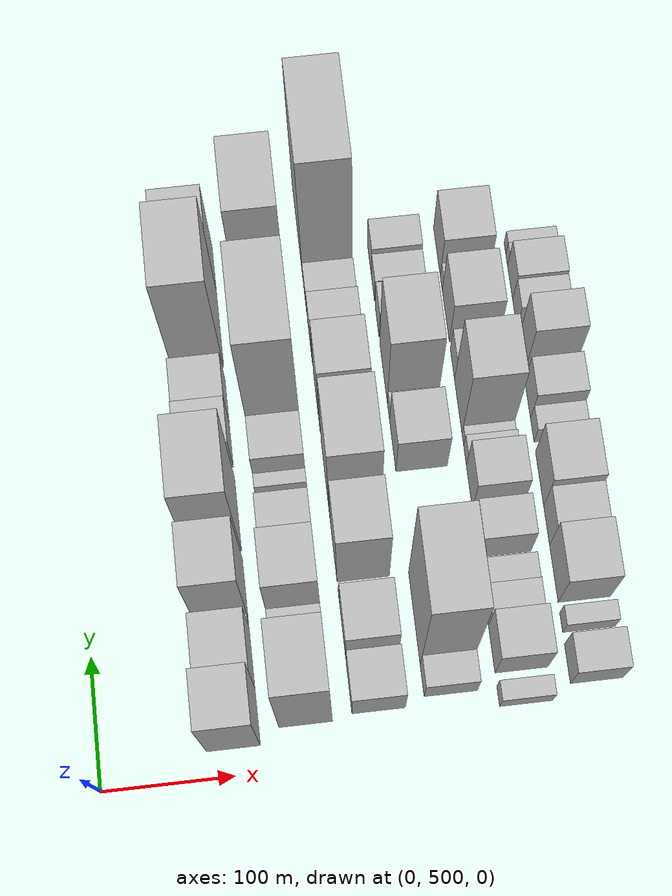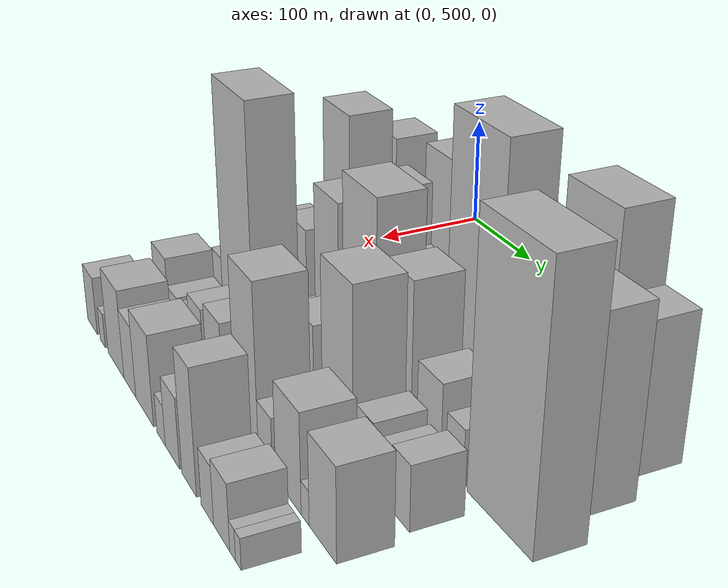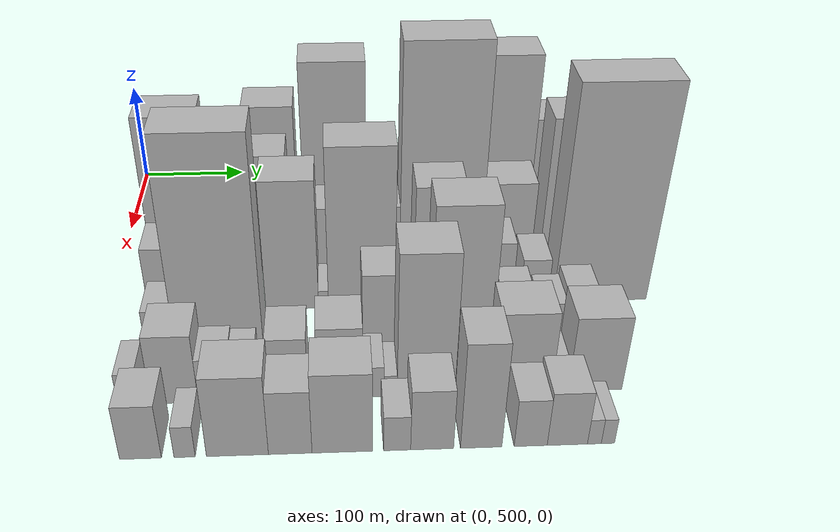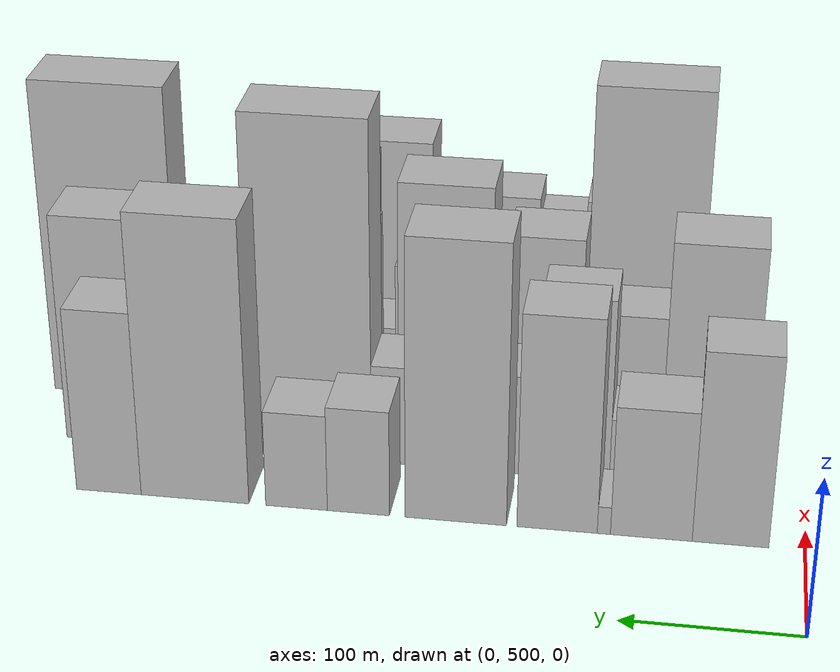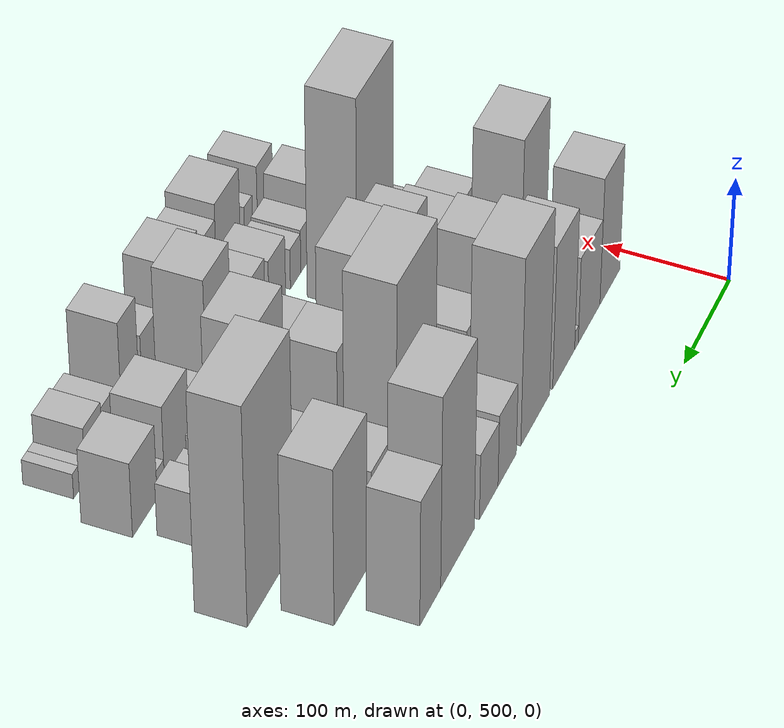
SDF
<sdf version="1.6">
 <world name="default">
  <model name="building_41">
   <static>1</static>
   <pose>100.0000 541.7731 0 0.000000 0.000000 0.000000</pose>
   <link name="link">
    <pose>0 0 61.50 0 0 0</pose>
    <collision name="collision"><geometry><box><size>40.0000 42.7162 123.0000</size></box></geometry></collision>
    <visual name="visual">
     <cast_shadows>0</cast_shadows>
     <geometry><box><size>40.0000 42.7162 123.0000</size></box></geometry>
     <material>
      <script>
       <uri>model://HANNAS_wall/materials/scripts</uri>
       <uri>model://HANNAS_wall/materials/textures</uri>
       <name>vrc/HANNAS_wall</name>
      </script>
     </material>
    </visual>
   </link>
  </model>
  <model name="building_42">
   <static>1</static>
   <pose>100.0000 586.1143 0 0.000000 0.000000 0.000000</pose>
   <link name="link">
    <pose>0 0 42.00 0 0 0</pose>
    <collision name="collision"><geometry><box><size>40.0000 45.9663 84.0000</size></box></geometry></collision>
    <visual name="visual">
     <cast_shadows>0</cast_shadows>
     <geometry><box><size>40.0000 45.9663 84.0000</size></box></geometry>
     <material>
      <script>
       <uri>model://HANNAS_wall/materials/scripts</uri>
       <uri>model://HANNAS_wall/materials/textures</uri>
       <name>vrc/HANNAS_wall</name>
      </script>
     </material>
    </visual>
   </link>
  </model>
  <model name="building_43">
   <static>1</static>
   <pose>100.0000 612.8241 0 0.000000 0.000000 0.000000</pose>
   <link name="link">
    <pose>0 0 9.00 0 0 0</pose>
    <collision name="collision"><geometry><box><size>40.0000 7.4533 18.0000</size></box></geometry></collision>
    <visual name="visual">
     <cast_shadows>0</cast_shadows>
     <geometry><box><size>40.0000 7.4533 18.0000</size></box></geometry>
     <material>
      <script>
       <uri>model://HANNAS_wall/materials/scripts</uri>
       <uri>model://HANNAS_wall/materials/textures</uri>
       <name>vrc/HANNAS_wall</name>
      </script>
     </material>
    </visual>
   </link>
  </model>
  <model name="building_44">
   <static>1</static>
   <pose>100.0000 639.4314 0 0.000000 0.000000 0.000000</pose>
   <link name="link">
    <pose>0 0 69.00 0 0 0</pose>
    <collision name="collision"><geometry><box><size>40.0000 45.7614 138.0000</size></box></geometry></collision>
    <visual name="visual">
     <cast_shadows>0</cast_shadows>
     <geometry><box><size>40.0000 45.7614 138.0000</size></box></geometry>
     <material>
      <script>
       <uri>model://HANNAS_wall/materials/scripts</uri>
       <uri>model://HANNAS_wall/materials/textures</uri>
       <name>vrc/HANNAS_wall</name>
      </script>
     </material>
    </visual>
   </link>
  </model>
  <model name="building_45">
   <static>1</static>
   <pose>100.0000 697.5358 0 0.000000 0.000000 0.000000</pose>
   <link name="link">
    <pose>0 0 90.00 0 0 0</pose>
    <collision name="collision"><geometry><box><size>40.0000 58.4473 180.0000</size></box></geometry></collision>
    <visual name="visual">
     <cast_shadows>0</cast_shadows>
     <geometry><box><size>40.0000 58.4473 180.0000</size></box></geometry>
     <material>
      <script>
       <uri>model://HANNAS_wall/materials/scripts</uri>
       <uri>model://HANNAS_wall/materials/textures</uri>
       <name>vrc/HANNAS_wall</name>
      </script>
     </material>
    </visual>
   </link>
  </model>
  <model name="building_46">
   <static>1</static>
   <pose>100.0000 753.8862 0 0.000000 0.000000 0.000000</pose>
   <link name="link">
    <pose>0 0 34.50 0 0 0</pose>
    <collision name="collision"><geometry><box><size>40.0000 36.2536 69.0000</size></box></geometry></collision>
    <visual name="visual">
     <cast_shadows>0</cast_shadows>
     <geometry><box><size>40.0000 36.2536 69.0000</size></box></geometry>
     <material>
      <script>
       <uri>model://HANNAS_wall/materials/scripts</uri>
       <uri>model://HANNAS_wall/materials/textures</uri>
       <name>vrc/HANNAS_wall</name>
      </script>
     </material>
    </visual>
   </link>
  </model>
  <model name="building_47">
   <static>1</static>
   <pose>100.0000 790.1084 0 0.000000 0.000000 0.000000</pose>
   <link name="link">
    <pose>0 0 31.50 0 0 0</pose>
    <collision name="collision"><geometry><box><size>40.0000 36.1908 63.0000</size></box></geometry></collision>
    <visual name="visual">
     <cast_shadows>0</cast_shadows>
     <geometry><box><size>40.0000 36.1908 63.0000</size></box></geometry>
     <material>
      <script>
       <uri>model://HANNAS_wall/materials/scripts</uri>
       <uri>model://HANNAS_wall/materials/textures</uri>
       <name>vrc/HANNAS_wall</name>
      </script>
     </material>
    </visual>
   </link>
  </model>
  <model name="building_48">
   <static>1</static>
   <pose>100.0000 850.2389 0 0.000000 0.000000 0.000000</pose>
   <link name="link">
    <pose>0 0 91.50 0 0 0</pose>
    <collision name="collision"><geometry><box><size>40.0000 64.0702 183.0000</size></box></geometry></collision>
    <visual name="visual">
     <cast_shadows>0</cast_shadows>
     <geometry><box><size>40.0000 64.0702 183.0000</size></box></geometry>
     <material>
      <script>
       <uri>model://HANNAS_wall/materials/scripts</uri>
       <uri>model://HANNAS_wall/materials/textures</uri>
       <name>vrc/HANNAS_wall</name>
      </script>
     </material>
    </visual>
   </link>
  </model>
  <model name="building_49">
   <static>1</static>
   <pose>100.0000 901.6904 0 0.000000 0.000000 0.000000</pose>
   <link name="link">
    <pose>0 0 60.00 0 0 0</pose>
    <collision name="collision"><geometry><box><size>40.0000 38.8329 120.0000</size></box></geometry></collision>
    <visual name="visual">
     <cast_shadows>0</cast_shadows>
     <geometry><box><size>40.0000 38.8329 120.0000</size></box></geometry>
     <material>
      <script>
       <uri>model://HANNAS_wall/materials/scripts</uri>
       <uri>model://HANNAS_wall/materials/textures</uri>
       <name>vrc/HANNAS_wall</name>
      </script>
     </material>
    </visual>
   </link>
  </model>
  <model name="building_91">
   <static>1</static>
   <pose>155.0000 558.3394 0 0.000000 0.000000 0.000000</pose>
   <link name="link">
    <pose>0 0 79.50 0 0 0</pose>
    <collision name="collision"><geometry><box><size>40.0000 52.7029 159.0000</size></box></geometry></collision>
    <visual name="visual">
     <cast_shadows>0</cast_shadows>
     <geometry><box><size>40.0000 52.7029 159.0000</size></box></geometry>
     <material>
      <script>
       <uri>model://HANNAS_wall/materials/scripts</uri>
       <uri>model://HANNAS_wall/materials/textures</uri>
       <name>vrc/HANNAS_wall</name>
      </script>
     </material>
    </visual>
   </link>
  </model>
  <model name="building_92">
   <static>1</static>
   <pose>155.0000 602.6896 0 0.000000 0.000000 0.000000</pose>
   <link name="link">
    <pose>0 0 21.00 0 0 0</pose>
    <collision name="collision"><geometry><box><size>40.0000 21.9977 42.0000</size></box></geometry></collision>
    <visual name="visual">
     <cast_shadows>0</cast_shadows>
     <geometry><box><size>40.0000 21.9977 42.0000</size></box></geometry>
     <material>
      <script>
       <uri>model://HANNAS_wall/materials/scripts</uri>
       <uri>model://HANNAS_wall/materials/textures</uri>
       <name>vrc/HANNAS_wall</name>
      </script>
     </material>
    </visual>
   </link>
  </model>
  <model name="building_93">
   <static>1</static>
   <pose>155.0000 634.9655 0 0.000000 0.000000 0.000000</pose>
   <link name="link">
    <pose>0 0 60.00 0 0 0</pose>
    <collision name="collision"><geometry><box><size>40.0000 42.5541 120.0000</size></box></geometry></collision>
    <visual name="visual">
     <cast_shadows>0</cast_shadows>
     <geometry><box><size>40.0000 42.5541 120.0000</size></box></geometry>
     <material>
      <script>
       <uri>model://HANNAS_wall/materials/scripts</uri>
       <uri>model://HANNAS_wall/materials/textures</uri>
       <name>vrc/HANNAS_wall</name>
      </script>
     </material>
    </visual>
   </link>
  </model>
  <model name="building_94">
   <static>1</static>
   <pose>155.0000 676.0114 0 0.000000 0.000000 0.000000</pose>
   <link name="link">
    <pose>0 0 33.00 0 0 0</pose>
    <collision name="collision"><geometry><box><size>40.0000 39.5377 66.0000</size></box></geometry></collision>
    <visual name="visual">
     <cast_shadows>0</cast_shadows>
     <geometry><box><size>40.0000 39.5377 66.0000</size></box></geometry>
     <material>
      <script>
       <uri>model://HANNAS_wall/materials/scripts</uri>
       <uri>model://HANNAS_wall/materials/textures</uri>
       <name>vrc/HANNAS_wall</name>
      </script>
     </material>
    </visual>
   </link>
  </model>
  <model name="building_95">
   <static>1</static>
   <pose>155.0000 699.5123 0 0.000000 0.000000 0.000000</pose>
   <link name="link">
    <pose>0 0 7.50 0 0 0</pose>
    <collision name="collision"><geometry><box><size>40.0000 7.4642 15.0000</size></box></geometry></collision>
    <visual name="visual">
     <cast_shadows>0</cast_shadows>
     <geometry><box><size>40.0000 7.4642 15.0000</size></box></geometry>
     <material>
      <script>
       <uri>model://HANNAS_wall/materials/scripts</uri>
       <uri>model://HANNAS_wall/materials/textures</uri>
       <name>vrc/HANNAS_wall</name>
      </script>
     </material>
    </visual>
   </link>
  </model>
  <model name="building_96">
   <static>1</static>
   <pose>155.0000 715.8029 0 0.000000 0.000000 0.000000</pose>
   <link name="link">
    <pose>0 0 13.50 0 0 0</pose>
    <collision name="collision"><geometry><box><size>40.0000 11.1169 27.0000</size></box></geometry></collision>
    <visual name="visual">
     <cast_shadows>0</cast_shadows>
     <geometry><box><size>40.0000 11.1169 27.0000</size></box></geometry>
     <material>
      <script>
       <uri>model://HANNAS_wall/materials/scripts</uri>
       <uri>model://HANNAS_wall/materials/textures</uri>
       <name>vrc/HANNAS_wall</name>
      </script>
     </material>
    </visual>
   </link>
  </model>
  <model name="building_97">
   <static>1</static>
   <pose>155.0000 738.3740 0 0.000000 0.000000 0.000000</pose>
   <link name="link">
    <pose>0 0 33.00 0 0 0</pose>
    <collision name="collision"><geometry><box><size>40.0000 34.0255 66.0000</size></box></geometry></collision>
    <visual name="visual">
     <cast_shadows>0</cast_shadows>
     <geometry><box><size>40.0000 34.0255 66.0000</size></box></geometry>
     <material>
      <script>
       <uri>model://HANNAS_wall/materials/scripts</uri>
       <uri>model://HANNAS_wall/materials/textures</uri>
       <name>vrc/HANNAS_wall</name>
      </script>
     </material>
    </visual>
   </link>
  </model>
  <model name="building_98">
   <static>1</static>
   <pose>155.0000 792.3889 0 0.000000 0.000000 0.000000</pose>
   <link name="link">
    <pose>0 0 111.00 0 0 0</pose>
    <collision name="collision"><geometry><box><size>40.0000 74.0043 222.0000</size></box></geometry></collision>
    <visual name="visual">
     <cast_shadows>0</cast_shadows>
     <geometry><box><size>40.0000 74.0043 222.0000</size></box></geometry>
     <material>
      <script>
       <uri>model://HANNAS_wall/materials/scripts</uri>
       <uri>model://HANNAS_wall/materials/textures</uri>
       <name>vrc/HANNAS_wall</name>
      </script>
     </material>
    </visual>
   </link>
  </model>
  <model name="building_99">
   <static>1</static>
   <pose>155.0000 852.4667 0 0.000000 0.000000 0.000000</pose>
   <link name="link">
    <pose>0 0 43.50 0 0 0</pose>
    <collision name="collision"><geometry><box><size>40.0000 46.1513 87.0000</size></box></geometry></collision>
    <visual name="visual">
     <cast_shadows>0</cast_shadows>
     <geometry><box><size>40.0000 46.1513 87.0000</size></box></geometry>
     <material>
      <script>
       <uri>model://HANNAS_wall/materials/scripts</uri>
       <uri>model://HANNAS_wall/materials/textures</uri>
       <name>vrc/HANNAS_wall</name>
      </script>
     </material>
    </visual>
   </link>
  </model>
  <model name="building_100">
   <static>1</static>
   <pose>155.0000 913.4995 0 0.000000 0.000000 0.000000</pose>
   <link name="link">
    <pose>0 0 75.00 0 0 0</pose>
    <collision name="collision"><geometry><box><size>40.0000 59.9141 150.0000</size></box></geometry></collision>
    <visual name="visual">
     <cast_shadows>0</cast_shadows>
     <geometry><box><size>40.0000 59.9141 150.0000</size></box></geometry>
     <material>
      <script>
       <uri>model://HANNAS_wall/materials/scripts</uri>
       <uri>model://HANNAS_wall/materials/textures</uri>
       <name>vrc/HANNAS_wall</name>
      </script>
     </material>
    </visual>
   </link>
  </model>
  <model name="building_146">
   <static>1</static>
   <pose>210.0000 554.4095 0 0.000000 0.000000 0.000000</pose>
   <link name="link">
    <pose>0 0 33.00 0 0 0</pose>
    <collision name="collision"><geometry><box><size>40.0000 36.8936 66.0000</size></box></geometry></collision>
    <visual name="visual">
     <cast_shadows>0</cast_shadows>
     <geometry><box><size>40.0000 36.8936 66.0000</size></box></geometry>
     <material>
      <script>
       <uri>model://HANNAS_wall/materials/scripts</uri>
       <uri>model://HANNAS_wall/materials/textures</uri>
       <name>vrc/HANNAS_wall</name>
      </script>
     </material>
    </visual>
   </link>
  </model>
  <model name="building_147">
   <static>1</static>
   <pose>210.0000 597.6910 0 0.000000 0.000000 0.000000</pose>
   <link name="link">
    <pose>0 0 40.50 0 0 0</pose>
    <collision name="collision"><geometry><box><size>40.0000 41.6693 81.0000</size></box></geometry></collision>
    <visual name="visual">
     <cast_shadows>0</cast_shadows>
     <geometry><box><size>40.0000 41.6693 81.0000</size></box></geometry>
     <material>
      <script>
       <uri>model://HANNAS_wall/materials/scripts</uri>
       <uri>model://HANNAS_wall/materials/textures</uri>
       <name>vrc/HANNAS_wall</name>
      </script>
     </material>
    </visual>
   </link>
  </model>
  <model name="building_148">
   <static>1</static>
   <pose>210.0000 623.4347 0 0.000000 0.000000 0.000000</pose>
   <link name="link">
    <pose>0 0 10.50 0 0 0</pose>
    <collision name="collision"><geometry><box><size>40.0000 9.8183 21.0000</size></box></geometry></collision>
    <visual name="visual">
     <cast_shadows>0</cast_shadows>
     <geometry><box><size>40.0000 9.8183 21.0000</size></box></geometry>
     <material>
      <script>
       <uri>model://HANNAS_wall/materials/scripts</uri>
       <uri>model://HANNAS_wall/materials/textures</uri>
       <name>vrc/HANNAS_wall</name>
      </script>
     </material>
    </visual>
   </link>
  </model>
  <model name="building_149">
   <static>1</static>
   <pose>210.0000 659.0717 0 0.000000 0.000000 0.000000</pose>
   <link name="link">
    <pose>0 0 64.50 0 0 0</pose>
    <collision name="collision"><geometry><box><size>40.0000 45.4556 129.0000</size></box></geometry></collision>
    <visual name="visual">
     <cast_shadows>0</cast_shadows>
     <geometry><box><size>40.0000 45.4556 129.0000</size></box></geometry>
     <material>
      <script>
       <uri>model://HANNAS_wall/materials/scripts</uri>
       <uri>model://HANNAS_wall/materials/textures</uri>
       <name>vrc/HANNAS_wall</name>
      </script>
     </material>
    </visual>
   </link>
  </model>
  <model name="building_150">
   <static>1</static>
   <pose>210.0000 686.0678 0 0.000000 0.000000 0.000000</pose>
   <link name="link">
    <pose>0 0 9.00 0 0 0</pose>
    <collision name="collision"><geometry><box><size>40.0000 8.5368 18.0000</size></box></geometry></collision>
    <visual name="visual">
     <cast_shadows>0</cast_shadows>
     <geometry><box><size>40.0000 8.5368 18.0000</size></box></geometry>
     <material>
      <script>
       <uri>model://HANNAS_wall/materials/scripts</uri>
       <uri>model://HANNAS_wall/materials/textures</uri>
       <name>vrc/HANNAS_wall</name>
      </script>
     </material>
    </visual>
   </link>
  </model>
  <model name="building_151">
   <static>1</static>
   <pose>210.0000 719.1659 0 0.000000 0.000000 0.000000</pose>
   <link name="link">
    <pose>0 0 79.50 0 0 0</pose>
    <collision name="collision"><geometry><box><size>40.0000 57.6592 159.0000</size></box></geometry></collision>
    <visual name="visual">
     <cast_shadows>0</cast_shadows>
     <geometry><box><size>40.0000 57.6592 159.0000</size></box></geometry>
     <material>
      <script>
       <uri>model://HANNAS_wall/materials/scripts</uri>
       <uri>model://HANNAS_wall/materials/textures</uri>
       <name>vrc/HANNAS_wall</name>
      </script>
     </material>
    </visual>
   </link>
  </model>
  <model name="building_152">
   <static>1</static>
   <pose>210.0000 760.3030 0 0.000000 0.000000 0.000000</pose>
   <link name="link">
    <pose>0 0 7.50 0 0 0</pose>
    <collision name="collision"><geometry><box><size>40.0000 6.6150 15.0000</size></box></geometry></collision>
    <visual name="visual">
     <cast_shadows>0</cast_shadows>
     <geometry><box><size>40.0000 6.6150 15.0000</size></box></geometry>
     <material>
      <script>
       <uri>model://HANNAS_wall/materials/scripts</uri>
       <uri>model://HANNAS_wall/materials/textures</uri>
       <name>vrc/HANNAS_wall</name>
      </script>
     </material>
    </visual>
   </link>
  </model>
  <model name="building_153">
   <static>1</static>
   <pose>210.0000 784.4665 0 0.000000 0.000000 0.000000</pose>
   <link name="link">
    <pose>0 0 60.00 0 0 0</pose>
    <collision name="collision"><geometry><box><size>40.0000 41.7122 120.0000</size></box></geometry></collision>
    <visual name="visual">
     <cast_shadows>0</cast_shadows>
     <geometry><box><size>40.0000 41.7122 120.0000</size></box></geometry>
     <material>
      <script>
       <uri>model://HANNAS_wall/materials/scripts</uri>
       <uri>model://HANNAS_wall/materials/textures</uri>
       <name>vrc/HANNAS_wall</name>
      </script>
     </material>
    </visual>
   </link>
  </model>
  <model name="building_154">
   <static>1</static>
   <pose>210.0000 832.0476 0 0.000000 0.000000 0.000000</pose>
   <link name="link">
    <pose>0 0 31.50 0 0 0</pose>
    <collision name="collision"><geometry><box><size>40.0000 35.4498 63.0000</size></box></geometry></collision>
    <visual name="visual">
     <cast_shadows>0</cast_shadows>
     <geometry><box><size>40.0000 35.4498 63.0000</size></box></geometry>
     <material>
      <script>
       <uri>model://HANNAS_wall/materials/scripts</uri>
       <uri>model://HANNAS_wall/materials/textures</uri>
       <name>vrc/HANNAS_wall</name>
      </script>
     </material>
    </visual>
   </link>
  </model>
  <model name="building_155">
   <static>1</static>
   <pose>210.0000 868.9091 0 0.000000 0.000000 0.000000</pose>
   <link name="link">
    <pose>0 0 22.50 0 0 0</pose>
    <collision name="collision"><geometry><box><size>40.0000 24.2731 45.0000</size></box></geometry></collision>
    <visual name="visual">
     <cast_shadows>0</cast_shadows>
     <geometry><box><size>40.0000 24.2731 45.0000</size></box></geometry>
     <material>
      <script>
       <uri>model://HANNAS_wall/materials/scripts</uri>
       <uri>model://HANNAS_wall/materials/textures</uri>
       <name>vrc/HANNAS_wall</name>
      </script>
     </material>
    </visual>
   </link>
  </model>
  <model name="building_156">
   <static>1</static>
   <pose>210.0000 926.9097 0 0.000000 0.000000 0.000000</pose>
   <link name="link">
    <pose>0 0 105.00 0 0 0</pose>
    <collision name="collision"><geometry><box><size>40.0000 81.7281 210.0000</size></box></geometry></collision>
    <visual name="visual">
     <cast_shadows>0</cast_shadows>
     <geometry><box><size>40.0000 81.7281 210.0000</size></box></geometry>
     <material>
      <script>
       <uri>model://HANNAS_wall/materials/scripts</uri>
       <uri>model://HANNAS_wall/materials/textures</uri>
       <name>vrc/HANNAS_wall</name>
      </script>
     </material>
    </visual>
   </link>
  </model>
  <model name="building_201">
   <static>1</static>
   <pose>265.0000 554.3818 0 0.000000 0.000000 0.000000</pose>
   <link name="link">
    <pose>0 0 22.50 0 0 0</pose>
    <collision name="collision"><geometry><box><size>40.0000 23.7141 45.0000</size></box></geometry></collision>
    <visual name="visual">
     <cast_shadows>0</cast_shadows>
     <geometry><box><size>40.0000 23.7141 45.0000</size></box></geometry>
     <material>
      <script>
       <uri>model://HANNAS_wall/materials/scripts</uri>
       <uri>model://HANNAS_wall/materials/textures</uri>
       <name>vrc/HANNAS_wall</name>
      </script>
     </material>
    </visual>
   </link>
  </model>
  <model name="building_202">
   <static>1</static>
   <pose>265.0000 601.8199 0 0.000000 0.000000 0.000000</pose>
   <link name="link">
    <pose>0 0 102.00 0 0 0</pose>
    <collision name="collision"><geometry><box><size>40.0000 71.1620 204.0000</size></box></geometry></collision>
    <visual name="visual">
     <cast_shadows>0</cast_shadows>
     <geometry><box><size>40.0000 71.1620 204.0000</size></box></geometry>
     <material>
      <script>
       <uri>model://HANNAS_wall/materials/scripts</uri>
       <uri>model://HANNAS_wall/materials/textures</uri>
       <name>vrc/HANNAS_wall</name>
      </script>
     </material>
    </visual>
   </link>
  </model>
  <model name="building_203">
   <static>1</static>
   <pose>265.0000 738.1792 0 0.000000 0.000000 0.000000</pose>
   <link name="link">
    <pose>0 0 37.50 0 0 0</pose>
    <collision name="collision"><geometry><box><size>40.0000 40.5189 75.0000</size></box></geometry></collision>
    <visual name="visual">
     <cast_shadows>0</cast_shadows>
     <geometry><box><size>40.0000 40.5189 75.0000</size></box></geometry>
     <material>
      <script>
       <uri>model://HANNAS_wall/materials/scripts</uri>
       <uri>model://HANNAS_wall/materials/textures</uri>
       <name>vrc/HANNAS_wall</name>
      </script>
     </material>
    </visual>
   </link>
  </model>
  <model name="building_204">
   <static>1</static>
   <pose>265.0000 766.0086 0 0.000000 0.000000 0.000000</pose>
   <link name="link">
    <pose>0 0 15.00 0 0 0</pose>
    <collision name="collision"><geometry><box><size>40.0000 15.1399 30.0000</size></box></geometry></collision>
    <visual name="visual">
     <cast_shadows>0</cast_shadows>
     <geometry><box><size>40.0000 15.1399 30.0000</size></box></geometry>
     <material>
      <script>
       <uri>model://HANNAS_wall/materials/scripts</uri>
       <uri>model://HANNAS_wall/materials/textures</uri>
       <name>vrc/HANNAS_wall</name>
      </script>
     </material>
    </visual>
   </link>
  </model>
  <model name="building_205">
   <static>1</static>
   <pose>265.0000 799.1255 0 0.000000 0.000000 0.000000</pose>
   <link name="link">
    <pose>0 0 69.00 0 0 0</pose>
    <collision name="collision"><geometry><box><size>40.0000 51.0938 138.0000</size></box></geometry></collision>
    <visual name="visual">
     <cast_shadows>0</cast_shadows>
     <geometry><box><size>40.0000 51.0938 138.0000</size></box></geometry>
     <material>
      <script>
       <uri>model://HANNAS_wall/materials/scripts</uri>
       <uri>model://HANNAS_wall/materials/textures</uri>
       <name>vrc/HANNAS_wall</name>
      </script>
     </material>
    </visual>
   </link>
  </model>
  <model name="building_206">
   <static>1</static>
   <pose>265.0000 842.9668 0 0.000000 0.000000 0.000000</pose>
   <link name="link">
    <pose>0 0 25.50 0 0 0</pose>
    <collision name="collision"><geometry><box><size>40.0000 26.5888 51.0000</size></box></geometry></collision>
    <visual name="visual">
     <cast_shadows>0</cast_shadows>
     <geometry><box><size>40.0000 26.5888 51.0000</size></box></geometry>
     <material>
      <script>
       <uri>model://HANNAS_wall/materials/scripts</uri>
       <uri>model://HANNAS_wall/materials/textures</uri>
       <name>vrc/HANNAS_wall</name>
      </script>
     </material>
    </visual>
   </link>
  </model>
  <model name="building_207">
   <static>1</static>
   <pose>265.0000 871.8011 0 0.000000 0.000000 0.000000</pose>
   <link name="link">
    <pose>0 0 21.00 0 0 0</pose>
    <collision name="collision"><geometry><box><size>40.0000 23.0799 42.0000</size></box></geometry></collision>
    <visual name="visual">
     <cast_shadows>0</cast_shadows>
     <geometry><box><size>40.0000 23.0799 42.0000</size></box></geometry>
     <material>
      <script>
       <uri>model://HANNAS_wall/materials/scripts</uri>
       <uri>model://HANNAS_wall/materials/textures</uri>
       <name>vrc/HANNAS_wall</name>
      </script>
     </material>
    </visual>
   </link>
  </model>
  <model name="building_208">
   <static>1</static>
   <pose>265.0000 896.2537 0 0.000000 0.000000 0.000000</pose>
   <link name="link">
    <pose>0 0 25.50 0 0 0</pose>
    <collision name="collision"><geometry><box><size>40.0000 25.8252 51.0000</size></box></geometry></collision>
    <visual name="visual">
     <cast_shadows>0</cast_shadows>
     <geometry><box><size>40.0000 25.8252 51.0000</size></box></geometry>
     <material>
      <script>
       <uri>model://HANNAS_wall/materials/scripts</uri>
       <uri>model://HANNAS_wall/materials/textures</uri>
       <name>vrc/HANNAS_wall</name>
      </script>
     </material>
    </visual>
   </link>
  </model>
  <model name="building_250">
   <static>1</static>
   <pose>320.0000 536.4073 0 0.000000 0.000000 0.000000</pose>
   <link name="link">
    <pose>0 0 15.00 0 0 0</pose>
    <collision name="collision"><geometry><box><size>40.0000 15.2091 30.0000</size></box></geometry></collision>
    <visual name="visual">
     <cast_shadows>0</cast_shadows>
     <geometry><box><size>40.0000 15.2091 30.0000</size></box></geometry>
     <material>
      <script>
       <uri>model://HANNAS_wall/materials/scripts</uri>
       <uri>model://HANNAS_wall/materials/textures</uri>
       <name>vrc/HANNAS_wall</name>
      </script>
     </material>
    </visual>
   </link>
  </model>
  <model name="building_251">
   <static>1</static>
   <pose>320.0000 572.0518 0 0.000000 0.000000 0.000000</pose>
   <link name="link">
    <pose>0 0 33.00 0 0 0</pose>
    <collision name="collision"><geometry><box><size>40.0000 36.0797 66.0000</size></box></geometry></collision>
    <visual name="visual">
     <cast_shadows>0</cast_shadows>
     <geometry><box><size>40.0000 36.0797 66.0000</size></box></geometry>
     <material>
      <script>
       <uri>model://HANNAS_wall/materials/scripts</uri>
       <uri>model://HANNAS_wall/materials/textures</uri>
       <name>vrc/HANNAS_wall</name>
      </script>
     </material>
    </visual>
   </link>
  </model>
  <model name="building_252">
   <static>1</static>
   <pose>320.0000 602.2467 0 0.000000 0.000000 0.000000</pose>
   <link name="link">
    <pose>0 0 21.00 0 0 0</pose>
    <collision name="collision"><geometry><box><size>40.0000 24.3101 42.0000</size></box></geometry></collision>
    <visual name="visual">
     <cast_shadows>0</cast_shadows>
     <geometry><box><size>40.0000 24.3101 42.0000</size></box></geometry>
     <material>
      <script>
       <uri>model://HANNAS_wall/materials/scripts</uri>
       <uri>model://HANNAS_wall/materials/textures</uri>
       <name>vrc/HANNAS_wall</name>
      </script>
     </material>
    </visual>
   </link>
  </model>
  <model name="building_253">
   <static>1</static>
   <pose>320.0000 624.3626 0 0.000000 0.000000 0.000000</pose>
   <link name="link">
    <pose>0 0 19.50 0 0 0</pose>
    <collision name="collision"><geometry><box><size>40.0000 19.9219 39.0000</size></box></geometry></collision>
    <visual name="visual">
     <cast_shadows>0</cast_shadows>
     <geometry><box><size>40.0000 19.9219 39.0000</size></box></geometry>
     <material>
      <script>
       <uri>model://HANNAS_wall/materials/scripts</uri>
       <uri>model://HANNAS_wall/materials/textures</uri>
       <name>vrc/HANNAS_wall</name>
      </script>
     </material>
    </visual>
   </link>
  </model>
  <model name="building_254">
   <static>1</static>
   <pose>320.0000 658.7819 0 0.000000 0.000000 0.000000</pose>
   <link name="link">
    <pose>0 0 30.00 0 0 0</pose>
    <collision name="collision"><geometry><box><size>40.0000 30.9166 60.0000</size></box></geometry></collision>
    <visual name="visual">
     <cast_shadows>0</cast_shadows>
     <geometry><box><size>40.0000 30.9166 60.0000</size></box></geometry>
     <material>
      <script>
       <uri>model://HANNAS_wall/materials/scripts</uri>
       <uri>model://HANNAS_wall/materials/textures</uri>
       <name>vrc/HANNAS_wall</name>
      </script>
     </material>
    </visual>
   </link>
  </model>
  <model name="building_255">
   <static>1</static>
   <pose>320.0000 698.8282 0 0.000000 0.000000 0.000000</pose>
   <link name="link">
    <pose>0 0 34.50 0 0 0</pose>
    <collision name="collision"><geometry><box><size>40.0000 35.1761 69.0000</size></box></geometry></collision>
    <visual name="visual">
     <cast_shadows>0</cast_shadows>
     <geometry><box><size>40.0000 35.1761 69.0000</size></box></geometry>
     <material>
      <script>
       <uri>model://HANNAS_wall/materials/scripts</uri>
       <uri>model://HANNAS_wall/materials/textures</uri>
       <name>vrc/HANNAS_wall</name>
      </script>
     </material>
    </visual>
   </link>
  </model>
  <model name="building_256">
   <static>1</static>
   <pose>320.0000 724.5007 0 0.000000 0.000000 0.000000</pose>
   <link name="link">
    <pose>0 0 15.00 0 0 0</pose>
    <collision name="collision"><geometry><box><size>40.0000 16.1689 30.0000</size></box></geometry></collision>
    <visual name="visual">
     <cast_shadows>0</cast_shadows>
     <geometry><box><size>40.0000 16.1689 30.0000</size></box></geometry>
     <material>
      <script>
       <uri>model://HANNAS_wall/materials/scripts</uri>
       <uri>model://HANNAS_wall/materials/textures</uri>
       <name>vrc/HANNAS_wall</name>
      </script>
     </material>
    </visual>
   </link>
  </model>
  <model name="building_257">
   <static>1</static>
   <pose>320.0000 737.6146 0 0.000000 0.000000 0.000000</pose>
   <link name="link">
    <pose>0 0 10.50 0 0 0</pose>
    <collision name="collision"><geometry><box><size>40.0000 10.0591 21.0000</size></box></geometry></collision>
    <visual name="visual">
     <cast_shadows>0</cast_shadows>
     <geometry><box><size>40.0000 10.0591 21.0000</size></box></geometry>
     <material>
      <script>
       <uri>model://HANNAS_wall/materials/scripts</uri>
       <uri>model://HANNAS_wall/materials/textures</uri>
       <name>vrc/HANNAS_wall</name>
      </script>
     </material>
    </visual>
   </link>
  </model>
  <model name="building_258">
   <static>1</static>
   <pose>320.0000 765.0134 0 0.000000 0.000000 0.000000</pose>
   <link name="link">
    <pose>0 0 67.50 0 0 0</pose>
    <collision name="collision"><geometry><box><size>40.0000 44.7385 135.0000</size></box></geometry></collision>
    <visual name="visual">
     <cast_shadows>0</cast_shadows>
     <geometry><box><size>40.0000 44.7385 135.0000</size></box></geometry>
     <material>
      <script>
       <uri>model://HANNAS_wall/materials/scripts</uri>
       <uri>model://HANNAS_wall/materials/textures</uri>
       <name>vrc/HANNAS_wall</name>
      </script>
     </material>
    </visual>
   </link>
  </model>
  <model name="building_259">
   <static>1</static>
   <pose>320.0000 800.3722 0 0.000000 0.000000 0.000000</pose>
   <link name="link">
    <pose>0 0 22.50 0 0 0</pose>
    <collision name="collision"><geometry><box><size>40.0000 25.9791 45.0000</size></box></geometry></collision>
    <visual name="visual">
     <cast_shadows>0</cast_shadows>
     <geometry><box><size>40.0000 25.9791 45.0000</size></box></geometry>
     <material>
      <script>
       <uri>model://HANNAS_wall/materials/scripts</uri>
       <uri>model://HANNAS_wall/materials/textures</uri>
       <name>vrc/HANNAS_wall</name>
      </script>
     </material>
    </visual>
   </link>
  </model>
  <model name="building_260">
   <static>1</static>
   <pose>320.0000 841.0494 0 0.000000 0.000000 0.000000</pose>
   <link name="link">
    <pose>0 0 39.00 0 0 0</pose>
    <collision name="collision"><geometry><box><size>40.0000 43.3754 78.0000</size></box></geometry></collision>
    <visual name="visual">
     <cast_shadows>0</cast_shadows>
     <geometry><box><size>40.0000 43.3754 78.0000</size></box></geometry>
     <material>
      <script>
       <uri>model://HANNAS_wall/materials/scripts</uri>
       <uri>model://HANNAS_wall/materials/textures</uri>
       <name>vrc/HANNAS_wall</name>
      </script>
     </material>
    </visual>
   </link>
  </model>
  <model name="building_261">
   <static>1</static>
   <pose>320.0000 869.2269 0 0.000000 0.000000 0.000000</pose>
   <link name="link">
    <pose>0 0 13.50 0 0 0</pose>
    <collision name="collision"><geometry><box><size>40.0000 12.9795 27.0000</size></box></geometry></collision>
    <visual name="visual">
     <cast_shadows>0</cast_shadows>
     <geometry><box><size>40.0000 12.9795 27.0000</size></box></geometry>
     <material>
      <script>
       <uri>model://HANNAS_wall/materials/scripts</uri>
       <uri>model://HANNAS_wall/materials/textures</uri>
       <name>vrc/HANNAS_wall</name>
      </script>
     </material>
    </visual>
   </link>
  </model>
  <model name="building_262">
   <static>1</static>
   <pose>320.0000 896.7632 0 0.000000 0.000000 0.000000</pose>
   <link name="link">
    <pose>0 0 36.00 0 0 0</pose>
    <collision name="collision"><geometry><box><size>40.0000 42.0932 72.0000</size></box></geometry></collision>
    <visual name="visual">
     <cast_shadows>0</cast_shadows>
     <geometry><box><size>40.0000 42.0932 72.0000</size></box></geometry>
     <material>
      <script>
       <uri>model://HANNAS_wall/materials/scripts</uri>
       <uri>model://HANNAS_wall/materials/textures</uri>
       <name>vrc/HANNAS_wall</name>
      </script>
     </material>
    </visual>
   </link>
  </model>
  <model name="building_304">
   <static>1</static>
   <pose>375.0000 554.6894 0 0.000000 0.000000 0.000000</pose>
   <link name="link">
    <pose>0 0 25.50 0 0 0</pose>
    <collision name="collision"><geometry><box><size>40.0000 29.8245 51.0000</size></box></geometry></collision>
    <visual name="visual">
     <cast_shadows>0</cast_shadows>
     <geometry><box><size>40.0000 29.8245 51.0000</size></box></geometry>
     <material>
      <script>
       <uri>model://HANNAS_wall/materials/scripts</uri>
       <uri>model://HANNAS_wall/materials/textures</uri>
       <name>vrc/HANNAS_wall</name>
      </script>
     </material>
    </visual>
   </link>
  </model>
  <model name="building_305">
   <static>1</static>
   <pose>375.0000 586.1857 0 0.000000 0.000000 0.000000</pose>
   <link name="link">
    <pose>0 0 15.00 0 0 0</pose>
    <collision name="collision"><geometry><box><size>40.0000 15.1681 30.0000</size></box></geometry></collision>
    <visual name="visual">
     <cast_shadows>0</cast_shadows>
     <geometry><box><size>40.0000 15.1681 30.0000</size></box></geometry>
     <material>
      <script>
       <uri>model://HANNAS_wall/materials/scripts</uri>
       <uri>model://HANNAS_wall/materials/textures</uri>
       <name>vrc/HANNAS_wall</name>
      </script>
     </material>
    </visual>
   </link>
  </model>
  <model name="building_306">
   <static>1</static>
   <pose>375.0000 624.0040 0 0.000000 0.000000 0.000000</pose>
   <link name="link">
    <pose>0 0 37.50 0 0 0</pose>
    <collision name="collision"><geometry><box><size>40.0000 44.4686 75.0000</size></box></geometry></collision>
    <visual name="visual">
     <cast_shadows>0</cast_shadows>
     <geometry><box><size>40.0000 44.4686 75.0000</size></box></geometry>
     <material>
      <script>
       <uri>model://HANNAS_wall/materials/scripts</uri>
       <uri>model://HANNAS_wall/materials/textures</uri>
       <name>vrc/HANNAS_wall</name>
      </script>
     </material>
    </visual>
   </link>
  </model>
  <model name="building_307">
   <static>1</static>
   <pose>375.0000 661.9418 0 0.000000 0.000000 0.000000</pose>
   <link name="link">
    <pose>0 0 30.00 0 0 0</pose>
    <collision name="collision"><geometry><box><size>40.0000 31.4072 60.0000</size></box></geometry></collision>
    <visual name="visual">
     <cast_shadows>0</cast_shadows>
     <geometry><box><size>40.0000 31.4072 60.0000</size></box></geometry>
     <material>
      <script>
       <uri>model://HANNAS_wall/materials/scripts</uri>
       <uri>model://HANNAS_wall/materials/textures</uri>
       <name>vrc/HANNAS_wall</name>
      </script>
     </material>
    </visual>
   </link>
  </model>
  <model name="building_308">
   <static>1</static>
   <pose>375.0000 699.5046 0 0.000000 0.000000 0.000000</pose>
   <link name="link">
    <pose>0 0 37.50 0 0 0</pose>
    <collision name="collision"><geometry><box><size>40.0000 43.7183 75.0000</size></box></geometry></collision>
    <visual name="visual">
     <cast_shadows>0</cast_shadows>
     <geometry><box><size>40.0000 43.7183 75.0000</size></box></geometry>
     <material>
      <script>
       <uri>model://HANNAS_wall/materials/scripts</uri>
       <uri>model://HANNAS_wall/materials/textures</uri>
       <name>vrc/HANNAS_wall</name>
      </script>
     </material>
    </visual>
   </link>
  </model>
  <model name="building_309">
   <static>1</static>
   <pose>375.0000 739.1700 0 0.000000 0.000000 0.000000</pose>
   <link name="link">
    <pose>0 0 16.50 0 0 0</pose>
    <collision name="collision"><geometry><box><size>40.0000 19.6125 33.0000</size></box></geometry></collision>
    <visual name="visual">
     <cast_shadows>0</cast_shadows>
     <geometry><box><size>40.0000 19.6125 33.0000</size></box></geometry>
     <material>
      <script>
       <uri>model://HANNAS_wall/materials/scripts</uri>
       <uri>model://HANNAS_wall/materials/textures</uri>
       <name>vrc/HANNAS_wall</name>
      </script>
     </material>
    </visual>
   </link>
  </model>
  <model name="building_310">
   <static>1</static>
   <pose>375.0000 764.6183 0 0.000000 0.000000 0.000000</pose>
   <link name="link">
    <pose>0 0 28.50 0 0 0</pose>
    <collision name="collision"><geometry><box><size>40.0000 31.2841 57.0000</size></box></geometry></collision>
    <visual name="visual">
     <cast_shadows>0</cast_shadows>
     <geometry><box><size>40.0000 31.2841 57.0000</size></box></geometry>
     <material>
      <script>
       <uri>model://HANNAS_wall/materials/scripts</uri>
       <uri>model://HANNAS_wall/materials/textures</uri>
       <name>vrc/HANNAS_wall</name>
      </script>
     </material>
    </visual>
   </link>
  </model>
  <model name="building_311">
   <static>1</static>
   <pose>375.0000 800.3799 0 0.000000 0.000000 0.000000</pose>
   <link name="link">
    <pose>0 0 49.50 0 0 0</pose>
    <collision name="collision"><geometry><box><size>40.0000 30.2391 99.0000</size></box></geometry></collision>
    <visual name="visual">
     <cast_shadows>0</cast_shadows>
     <geometry><box><size>40.0000 30.2391 99.0000</size></box></geometry>
     <material>
      <script>
       <uri>model://HANNAS_wall/materials/scripts</uri>
       <uri>model://HANNAS_wall/materials/textures</uri>
       <name>vrc/HANNAS_wall</name>
      </script>
     </material>
    </visual>
   </link>
  </model>
  <model name="building_312">
   <static>1</static>
   <pose>375.0000 836.5964 0 0.000000 0.000000 0.000000</pose>
   <link name="link">
    <pose>0 0 22.50 0 0 0</pose>
    <collision name="collision"><geometry><box><size>40.0000 24.1939 45.0000</size></box></geometry></collision>
    <visual name="visual">
     <cast_shadows>0</cast_shadows>
     <geometry><box><size>40.0000 24.1939 45.0000</size></box></geometry>
     <material>
      <script>
       <uri>model://HANNAS_wall/materials/scripts</uri>
       <uri>model://HANNAS_wall/materials/textures</uri>
       <name>vrc/HANNAS_wall</name>
      </script>
     </material>
    </visual>
   </link>
  </model>
  <model name="building_313">
   <static>1</static>
   <pose>375.0000 863.4879 0 0.000000 0.000000 0.000000</pose>
   <link name="link">
    <pose>0 0 25.50 0 0 0</pose>
    <collision name="collision"><geometry><box><size>40.0000 29.5891 51.0000</size></box></geometry></collision>
    <visual name="visual">
     <cast_shadows>0</cast_shadows>
     <geometry><box><size>40.0000 29.5891 51.0000</size></box></geometry>
     <material>
      <script>
       <uri>model://HANNAS_wall/materials/scripts</uri>
       <uri>model://HANNAS_wall/materials/textures</uri>
       <name>vrc/HANNAS_wall</name>
      </script>
     </material>
    </visual>
   </link>
  </model>
  <model name="building_314">
   <static>1</static>
   <pose>375.0000 883.3765 0 0.000000 0.000000 0.000000</pose>
   <link name="link">
    <pose>0 0 12.00 0 0 0</pose>
    <collision name="collision"><geometry><box><size>40.0000 10.1880 24.0000</size></box></geometry></collision>
    <visual name="visual">
     <cast_shadows>0</cast_shadows>
     <geometry><box><size>40.0000 10.1880 24.0000</size></box></geometry>
     <material>
      <script>
       <uri>model://HANNAS_wall/materials/scripts</uri>
       <uri>model://HANNAS_wall/materials/textures</uri>
       <name>vrc/HANNAS_wall</name>
      </script>
     </material>
    </visual>
   </link>
  </model>
  <model name="building_315">
   <static>1</static>
   <pose>375.0000 893.3809 0 0.000000 0.000000 0.000000</pose>
   <link name="link">
    <pose>0 0 12.00 0 0 0</pose>
    <collision name="collision"><geometry><box><size>40.0000 9.8208 24.0000</size></box></geometry></collision>
    <visual name="visual">
     <cast_shadows>0</cast_shadows>
     <geometry><box><size>40.0000 9.8208 24.0000</size></box></geometry>
     <material>
      <script>
       <uri>model://HANNAS_wall/materials/scripts</uri>
       <uri>model://HANNAS_wall/materials/textures</uri>
       <name>vrc/HANNAS_wall</name>
      </script>
     </material>
    </visual>
   </link>
  </model>
 </world>
</sdf>
